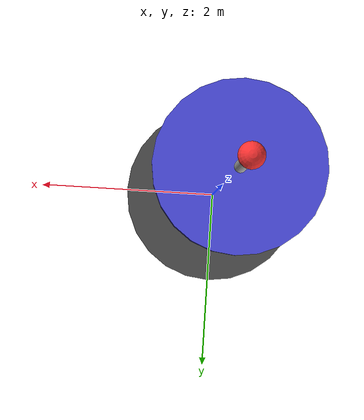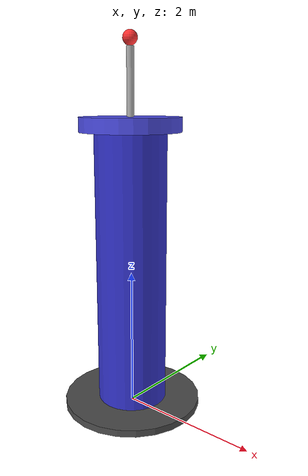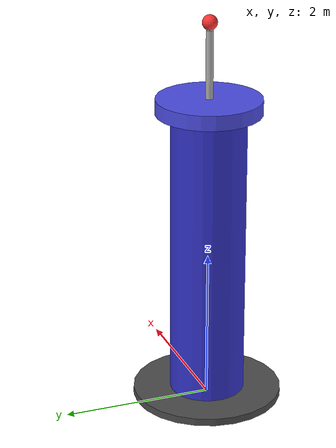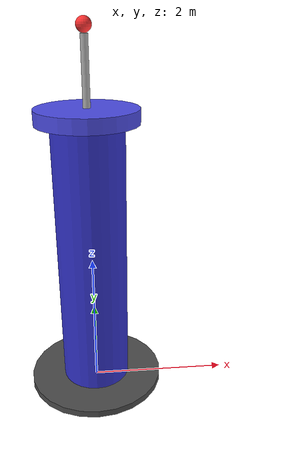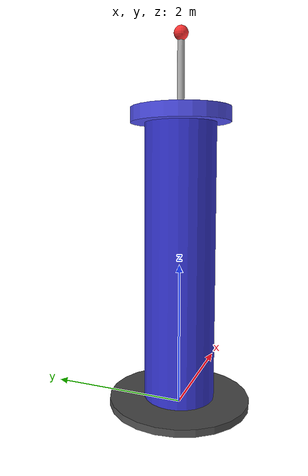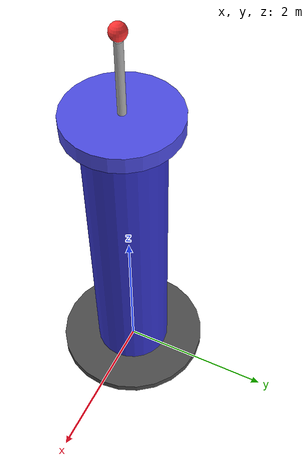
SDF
<?xml version="1.0" ?>
<sdf version="1.6">
  <model name="central_tower">

    <!-- Static model - won't be affected by physics -->
    <static>true</static>

    <link name="tower_link">
      <!-- Pose: centered at base, tower extends upward -->
      <pose>0 0 2.0 0 0 0</pose>

      <!-- Main Tower Body -->
      <visual name="tower_body_visual">
        <geometry>
          <cylinder>
            <radius>0.5</radius>
            <length>4.0</length>
          </cylinder>
        </geometry>
        <material>
          <ambient>0.1 0.1 0.6 1</ambient>
          <diffuse>0.2 0.2 0.8 1</diffuse>
          <specular>0.5 0.5 0.5 1</specular>
        </material>
      </visual>

      <collision name="tower_body_collision">
        <geometry>
          <cylinder>
            <radius>0.5</radius>
            <length>4.0</length>
          </cylinder>
        </geometry>
      </collision>
    </link>

    <!-- Tower Top / Antenna Platform -->
    <link name="tower_top_link">
      <pose>0 0 4.1 0 0 0</pose>

      <visual name="tower_top_visual">
        <geometry>
          <cylinder>
            <radius>0.7</radius>
            <length>0.2</length>
          </cylinder>
        </geometry>
        <material>
          <ambient>0.15 0.15 0.7 1</ambient>
          <diffuse>0.3 0.3 0.9 1</diffuse>
          <specular>0.6 0.6 0.6 1</specular>
        </material>
      </visual>

      <collision name="tower_top_collision">
        <geometry>
          <cylinder>
            <radius>0.7</radius>
            <length>0.2</length>
          </cylinder>
        </geometry>
      </collision>
    </link>

    <!-- Antenna -->
    <link name="antenna_link">
      <pose>0 0 4.6 0 0 0</pose>

      <visual name="antenna_visual">
        <geometry>
          <cylinder>
            <radius>0.05</radius>
            <length>1.0</length>
          </cylinder>
        </geometry>
        <material>
          <ambient>0.5 0.5 0.5 1</ambient>
          <diffuse>0.7 0.7 0.7 1</diffuse>
          <specular>0.8 0.8 0.8 1</specular>
        </material>
      </visual>
    </link>

    <!-- Beacon Light on top -->
    <link name="beacon_link">
      <pose>0 0 5.2 0 0 0</pose>

      <visual name="beacon_visual">
        <geometry>
          <sphere>
            <radius>0.1</radius>
          </sphere>
        </geometry>
        <material>
          <ambient>0.9 0.1 0.1 1</ambient>
          <diffuse>1.0 0.2 0.2 1</diffuse>
          <specular>1.0 0.5 0.5 1</specular>
          <emissive>0.8 0.1 0.1 1</emissive>
        </material>
      </visual>
    </link>

    <!-- Base Platform -->
    <link name="base_link">
      <pose>0 0 0.05 0 0 0</pose>

      <visual name="base_visual">
        <geometry>
          <cylinder>
            <radius>1.0</radius>
            <length>0.1</length>
          </cylinder>
        </geometry>
        <material>
          <ambient>0.2 0.2 0.2 1</ambient>
          <diffuse>0.3 0.3 0.3 1</diffuse>
          <specular>0.4 0.4 0.4 1</specular>
        </material>
      </visual>

      <collision name="base_collision">
        <geometry>
          <cylinder>
            <radius>1.0</radius>
            <length>0.1</length>
          </cylinder>
        </geometry>
      </collision>
    </link>

    <!-- Fixed joints to connect all links -->
    <joint name="base_to_tower" type="fixed">
      <parent>base_link</parent>
      <child>tower_link</child>
    </joint>

    <joint name="tower_to_top" type="fixed">
      <parent>tower_link</parent>
      <child>tower_top_link</child>
    </joint>

    <joint name="top_to_antenna" type="fixed">
      <parent>tower_top_link</parent>
      <child>antenna_link</child>
    </joint>

    <joint name="antenna_to_beacon" type="fixed">
      <parent>antenna_link</parent>
      <child>beacon_link</child>
    </joint>

  </model>
</sdf>
